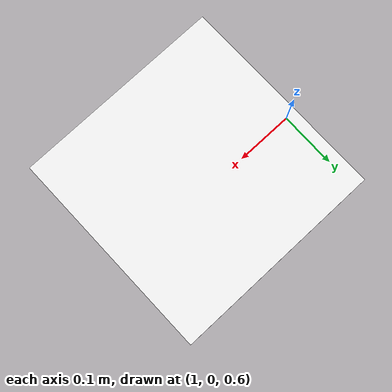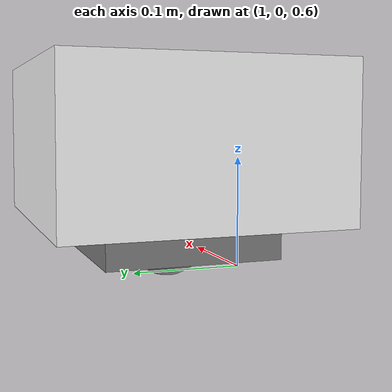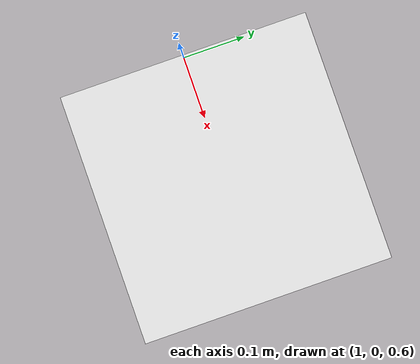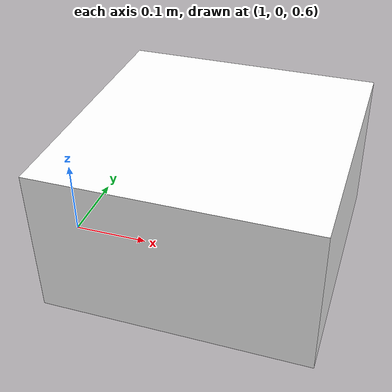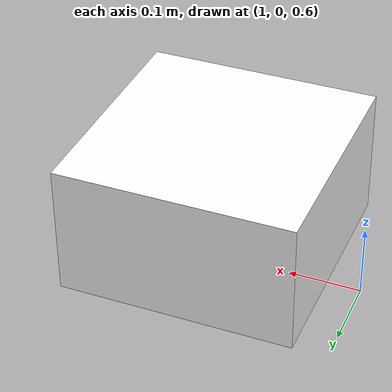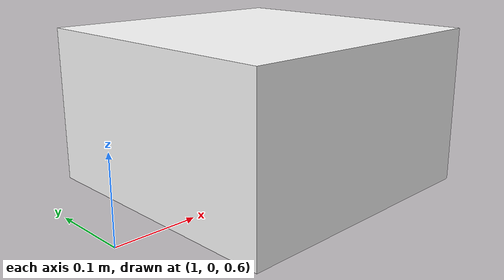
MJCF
<mujoco model="foam">
    <default>
        <geom contype="1" conaffinity="1" friction="0.8 0.8 0.8" />
    </default>

    <asset>
        <material name="white" rgba="1 1 1 1" />
    </asset>

  <worldbody>
   <body name="stool_support" pos="1.2 0 0.6">

      <site name="stool_support_root" pos="0 0 0" size="0.05" type="sphere" rgba="0.5 0.5 0.5 1"/>
      <geom type="box" size="0.1 0.1 0.02" pos="0 0 0"/>
    </body>
  </worldbody>

    <worldbody>
        <body name="foam" pos="1.2 0 0.8">
            <freejoint name="foam_root"/>
            <geom type="box" size="0.16 0.16 0.09" pos="0 0 -0.09" material="white" mass="1"/>
        </body>
    </worldbody>

  <sensor>
    <framepos name="foam_pos" objtype="xbody" objname="foam"/>
    <framequat name="foam_quat" objtype="xbody" objname="foam"/>
  </sensor>
</mujoco>
